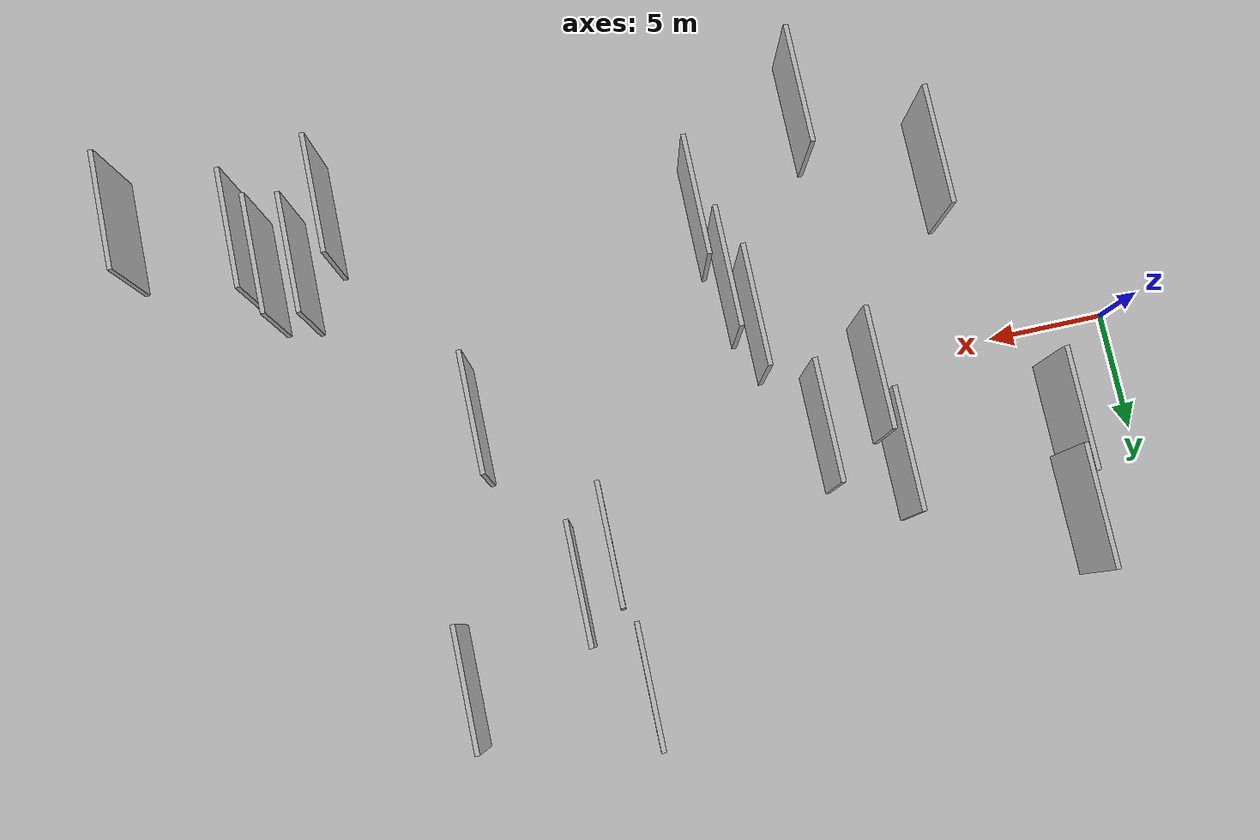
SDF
<?xml version="1.0" encoding="utf-8"?>

<sdf version="1.6">

   <world name="default">

      <gui fullscreen="0">

         <camera name="user_camera">

            <pose>-15 0 4.57585 0 0 0</pose>

            <view_controller>orbit</view_controller>

         </camera>

      </gui>

      <scene>

         <sky>

           <clouds>

             <speed>12</speed>

           </clouds>

         </sky>

         <ambient>0.4 0.4 0.4 1</ambient>

         <background>0.7 0.7 0.7 1</background>

         <shadows>1</shadows>

      </scene>

      <gravity>0 0 -9.8066</gravity>

      <magnetic_field>6e-06 2.3e-05 -4.2e-05</magnetic_field>

      <physics default="0" name="default_physics" type="ode">

         <ode>

            <solver>

               <type>quick</type>

               <iters>10</iters>

               <sor>1.0</sor>

               <use_dynamic_moi_rescaling>0</use_dynamic_moi_rescaling>

            </solver>

            <constraints>

               <cfm>0</cfm>

               <erp>0.2</erp>

               <contact_max_correcting_vel>100</contact_max_correcting_vel>

               <contact_surface_layer>0.001</contact_surface_layer>

            </constraints>

         </ode>

         <max_step_size>0.004</max_step_size>

         <real_time_factor>1</real_time_factor>

         <real_time_update_rate>250</real_time_update_rate>

      </physics>

      <light name="sun" type="directional">

         <cast_shadows>1</cast_shadows>

         <pose>0 0 10 0 0 0</pose>

         <diffuse>0.8 0.8 0.8 1</diffuse>

         <specular>0.2 0.2 0.2 1</specular>

         <attenuation>

            <range>1000</range>

            <constant>0.9</constant>

            <linear>0.01</linear>

            <quadratic>0.001</quadratic>

         </attenuation>

         <direction>-0.5 0.1 -0.9</direction>

      </light>

      <include>

         <name>ground_plane_1</name>

         <uri>model://HANNAS_ground_plane</uri>

         <pose>0 0 0  0 0 0</pose>

      </include>

      <include>

         <name>ground_plane_2</name>

         <uri>model://HANNAS_ground_plane</uri>

         <pose>100 0 0  0 0 0</pose>

      </include>

      <model name="HANNAS_wall_1">

         <static>1</static>

         <pose frame="">29.6323 9.9711 2.5 0.000000 0.000000 1.570796</pose>

         <link name="link">

            <pose frame="">0 0 2.50 0 0 0</pose>

            <collision name="collision">

               <geometry>

                  <box>

                     <size>5.00 0.2 5.00</size>

                  </box>

               </geometry>

               <max_contacts>10</max_contacts>

               <surface>

                  <contact>

                     <ode/>

                  </contact>

                  <bounce/>

                  <friction>

                     <torsional>

                        <ode/>

                     </torsional>

                     <ode/>

                  </friction>

               </surface>

            </collision>

            <visual name="visual">

               <cast_shadows>0</cast_shadows>

               <geometry>

                  <box>

                     <size>5.00 0.2 5.00</size>

                  </box>

               </geometry>

               <material>

                  <script>

                     <uri>model://HANNAS_wall/materials/scripts</uri>

                     <uri>model://HANNAS_wall/materials/textures</uri>

                     <name>vrc/HANNAS_wall</name>

                  </script>

               </material>

            </visual>

            <self_collide>0</self_collide>

            <enable_wind>0</enable_wind>

            <kinematic>0</kinematic>

         </link>

      </model>

      <model name="HANNAS_wall_2">

         <static>1</static>

         <pose frame="">11.9183 -10.7763 2.5 0.000000 0.000000 1.570796</pose>

         <link name="link">

            <pose frame="">0 0 2.50 0 0 0</pose>

            <collision name="collision">

               <geometry>

                  <box>

                     <size>5.00 0.2 5.00</size>

                  </box>

               </geometry>

               <max_contacts>10</max_contacts>

               <surface>

                  <contact>

                     <ode/>

                  </contact>

                  <bounce/>

                  <friction>

                     <torsional>

                        <ode/>

                     </torsional>

                     <ode/>

                  </friction>

               </surface>

            </collision>

            <visual name="visual">

               <cast_shadows>0</cast_shadows>

               <geometry>

                  <box>

                     <size>5.00 0.2 5.00</size>

                  </box>

               </geometry>

               <material>

                  <script>

                     <uri>model://HANNAS_wall/materials/scripts</uri>

                     <uri>model://HANNAS_wall/materials/textures</uri>

                     <name>vrc/HANNAS_wall</name>

                  </script>

               </material>

            </visual>

            <self_collide>0</self_collide>

            <enable_wind>0</enable_wind>

            <kinematic>0</kinematic>

         </link>

      </model>

      <model name="HANNAS_wall_3">

         <static>1</static>

         <pose frame="">33.2315 -8.1666 2.5 0.000000 0.000000 1.570796</pose>

         <link name="link">

            <pose frame="">0 0 2.50 0 0 0</pose>

            <collision name="collision">

               <geometry>

                  <box>

                     <size>5.00 0.2 5.00</size>

                  </box>

               </geometry>

               <max_contacts>10</max_contacts>

               <surface>

                  <contact>

                     <ode/>

                  </contact>

                  <bounce/>

                  <friction>

                     <torsional>

                        <ode/>

                     </torsional>

                     <ode/>

                  </friction>

               </surface>

            </collision>

            <visual name="visual">

               <cast_shadows>0</cast_shadows>

               <geometry>

                  <box>

                     <size>5.00 0.2 5.00</size>

                  </box>

               </geometry>

               <material>

                  <script>

                     <uri>model://HANNAS_wall/materials/scripts</uri>

                     <uri>model://HANNAS_wall/materials/textures</uri>

                     <name>vrc/HANNAS_wall</name>

                  </script>

               </material>

            </visual>

            <self_collide>0</self_collide>

            <enable_wind>0</enable_wind>

            <kinematic>0</kinematic>

         </link>

      </model>

      <model name="HANNAS_wall_4">

         <static>1</static>

         <pose frame="">31.8555 -10.3604 2.5 0.000000 0.000000 1.570796</pose>

         <link name="link">

            <pose frame="">0 0 2.50 0 0 0</pose>

            <collision name="collision">

               <geometry>

                  <box>

                     <size>5.00 0.2 5.00</size>

                  </box>

               </geometry>

               <max_contacts>10</max_contacts>

               <surface>

                  <contact>

                     <ode/>

                  </contact>

                  <bounce/>

                  <friction>

                     <torsional>

                        <ode/>

                     </torsional>

                     <ode/>

                  </friction>

               </surface>

            </collision>

            <visual name="visual">

               <cast_shadows>0</cast_shadows>

               <geometry>

                  <box>

                     <size>5.00 0.2 5.00</size>

                  </box>

               </geometry>

               <material>

                  <script>

                     <uri>model://HANNAS_wall/materials/scripts</uri>

                     <uri>model://HANNAS_wall/materials/textures</uri>

                     <name>vrc/HANNAS_wall</name>

                  </script>

               </material>

            </visual>

            <self_collide>0</self_collide>

            <enable_wind>0</enable_wind>

            <kinematic>0</kinematic>

         </link>

      </model>

      <model name="HANNAS_wall_5">

         <static>1</static>

         <pose frame="">4.2791 8.1988 2.5 0.000000 0.000000 1.570796</pose>

         <link name="link">

            <pose frame="">0 0 2.50 0 0 0</pose>

            <collision name="collision">

               <geometry>

                  <box>

                     <size>5.00 0.2 5.00</size>

                  </box>

               </geometry>

               <max_contacts>10</max_contacts>

               <surface>

                  <contact>

                     <ode/>

                  </contact>

                  <bounce/>

                  <friction>

                     <torsional>

                        <ode/>

                     </torsional>

                     <ode/>

                  </friction>

               </surface>

            </collision>

            <visual name="visual">

               <cast_shadows>0</cast_shadows>

               <geometry>

                  <box>

                     <size>5.00 0.2 5.00</size>

                  </box>

               </geometry>

               <material>

                  <script>

                     <uri>model://HANNAS_wall/materials/scripts</uri>

                     <uri>model://HANNAS_wall/materials/textures</uri>

                     <name>vrc/HANNAS_wall</name>

                  </script>

               </material>

            </visual>

            <self_collide>0</self_collide>

            <enable_wind>0</enable_wind>

            <kinematic>0</kinematic>

         </link>

      </model>

      <model name="HANNAS_wall_6">

         <static>1</static>

         <pose frame="">35.4188 -9.6532 2.5 0.000000 0.000000 1.570796</pose>

         <link name="link">

            <pose frame="">0 0 2.50 0 0 0</pose>

            <collision name="collision">

               <geometry>

                  <box>

                     <size>5.00 0.2 5.00</size>

                  </box>

               </geometry>

               <max_contacts>10</max_contacts>

               <surface>

                  <contact>

                     <ode/>

                  </contact>

                  <bounce/>

                  <friction>

                     <torsional>

                        <ode/>

                     </torsional>

                     <ode/>

                  </friction>

               </surface>

            </collision>

            <visual name="visual">

               <cast_shadows>0</cast_shadows>

               <geometry>

                  <box>

                     <size>5.00 0.2 5.00</size>

                  </box>

               </geometry>

               <material>

                  <script>

                     <uri>model://HANNAS_wall/materials/scripts</uri>

                     <uri>model://HANNAS_wall/materials/textures</uri>

                     <name>vrc/HANNAS_wall</name>

                  </script>

               </material>

            </visual>

            <self_collide>0</self_collide>

            <enable_wind>0</enable_wind>

            <kinematic>0</kinematic>

         </link>

      </model>

      <model name="HANNAS_wall_7">

         <static>1</static>

         <pose frame="">40.2267 -11.4099 2.5 0.000000 0.000000 1.570796</pose>

         <link name="link">

            <pose frame="">0 0 2.50 0 0 0</pose>

            <collision name="collision">

               <geometry>

                  <box>

                     <size>5.00 0.2 5.00</size>

                  </box>

               </geometry>

               <max_contacts>10</max_contacts>

               <surface>

                  <contact>

                     <ode/>

                  </contact>

                  <bounce/>

                  <friction>

                     <torsional>

                        <ode/>

                     </torsional>

                     <ode/>

                  </friction>

               </surface>

            </collision>

            <visual name="visual">

               <cast_shadows>0</cast_shadows>

               <geometry>

                  <box>

                     <size>5.00 0.2 5.00</size>

                  </box>

               </geometry>

               <material>

                  <script>

                     <uri>model://HANNAS_wall/materials/scripts</uri>

                     <uri>model://HANNAS_wall/materials/textures</uri>

                     <name>vrc/HANNAS_wall</name>

                  </script>

               </material>

            </visual>

            <self_collide>0</self_collide>

            <enable_wind>0</enable_wind>

            <kinematic>0</kinematic>

         </link>

      </model>

      <model name="HANNAS_wall_8">

         <static>1</static>

         <pose frame="">13.8173 2.7750 2.5 0.000000 0.000000 1.570796</pose>

         <link name="link">

            <pose frame="">0 0 2.50 0 0 0</pose>

            <collision name="collision">

               <geometry>

                  <box>

                     <size>5.00 0.2 5.00</size>

                  </box>

               </geometry>

               <max_contacts>10</max_contacts>

               <surface>

                  <contact>

                     <ode/>

                  </contact>

                  <bounce/>

                  <friction>

                     <torsional>

                        <ode/>

                     </torsional>

                     <ode/>

                  </friction>

               </surface>

            </collision>

            <visual name="visual">

               <cast_shadows>0</cast_shadows>

               <geometry>

                  <box>

                     <size>5.00 0.2 5.00</size>

                  </box>

               </geometry>

               <material>

                  <script>

                     <uri>model://HANNAS_wall/materials/scripts</uri>

                     <uri>model://HANNAS_wall/materials/textures</uri>

                     <name>vrc/HANNAS_wall</name>

                  </script>

               </material>

            </visual>

            <self_collide>0</self_collide>

            <enable_wind>0</enable_wind>

            <kinematic>0</kinematic>

         </link>

      </model>

      <model name="HANNAS_wall_9">

         <static>1</static>

         <pose frame="">23.1406 5.7206 2.5 0.000000 0.000000 1.570796</pose>

         <link name="link">

            <pose frame="">0 0 2.50 0 0 0</pose>

            <collision name="collision">

               <geometry>

                  <box>

                     <size>5.00 0.2 5.00</size>

                  </box>

               </geometry>

               <max_contacts>10</max_contacts>

               <surface>

                  <contact>

                     <ode/>

                  </contact>

                  <bounce/>

                  <friction>

                     <torsional>

                        <ode/>

                     </torsional>

                     <ode/>

                  </friction>

               </surface>

            </collision>

            <visual name="visual">

               <cast_shadows>0</cast_shadows>

               <geometry>

                  <box>

                     <size>5.00 0.2 5.00</size>

                  </box>

               </geometry>

               <material>

                  <script>

                     <uri>model://HANNAS_wall/materials/scripts</uri>

                     <uri>model://HANNAS_wall/materials/textures</uri>

                     <name>vrc/HANNAS_wall</name>

                  </script>

               </material>

            </visual>

            <self_collide>0</self_collide>

            <enable_wind>0</enable_wind>

            <kinematic>0</kinematic>

         </link>

      </model>

      <model name="HANNAS_wall_10">

         <static>1</static>

         <pose frame="">11.3944 1.1582 2.5 0.000000 0.000000 1.570796</pose>

         <link name="link">

            <pose frame="">0 0 2.50 0 0 0</pose>

            <collision name="collision">

               <geometry>

                  <box>

                     <size>5.00 0.2 5.00</size>

                  </box>

               </geometry>

               <max_contacts>10</max_contacts>

               <surface>

                  <contact>

                     <ode/>

                  </contact>

                  <bounce/>

                  <friction>

                     <torsional>

                        <ode/>

                     </torsional>

                     <ode/>

                  </friction>

               </surface>

            </collision>

            <visual name="visual">

               <cast_shadows>0</cast_shadows>

               <geometry>

                  <box>

                     <size>5.00 0.2 5.00</size>

                  </box>

               </geometry>

               <material>

                  <script>

                     <uri>model://HANNAS_wall/materials/scripts</uri>

                     <uri>model://HANNAS_wall/materials/textures</uri>

                     <name>vrc/HANNAS_wall</name>

                  </script>

               </material>

            </visual>

            <self_collide>0</self_collide>

            <enable_wind>0</enable_wind>

            <kinematic>0</kinematic>

         </link>

      </model>

      <model name="HANNAS_wall_11">

         <static>1</static>

         <pose frame="">22.7421 11.3130 2.5 0.000000 0.000000 1.570796</pose>

         <link name="link">

            <pose frame="">0 0 2.50 0 0 0</pose>

            <collision name="collision">

               <geometry>

                  <box>

                     <size>5.00 0.2 5.00</size>

                  </box>

               </geometry>

               <max_contacts>10</max_contacts>

               <surface>

                  <contact>

                     <ode/>

                  </contact>

                  <bounce/>

                  <friction>

                     <torsional>

                        <ode/>

                     </torsional>

                     <ode/>

                  </friction>

               </surface>

            </collision>

            <visual name="visual">

               <cast_shadows>0</cast_shadows>

               <geometry>

                  <box>

                     <size>5.00 0.2 5.00</size>

                  </box>

               </geometry>

               <material>

                  <script>

                     <uri>model://HANNAS_wall/materials/scripts</uri>

                     <uri>model://HANNAS_wall/materials/textures</uri>

                     <name>vrc/HANNAS_wall</name>

                  </script>

               </material>

            </visual>

            <self_collide>0</self_collide>

            <enable_wind>0</enable_wind>

            <kinematic>0</kinematic>

         </link>

      </model>

      <model name="HANNAS_wall_12">

         <static>1</static>

         <pose frame="">16.9407 -7.1374 2.5 0.000000 0.000000 1.570796</pose>

         <link name="link">

            <pose frame="">0 0 2.50 0 0 0</pose>

            <collision name="collision">

               <geometry>

                  <box>

                     <size>5.00 0.2 5.00</size>

                  </box>

               </geometry>

               <max_contacts>10</max_contacts>

               <surface>

                  <contact>

                     <ode/>

                  </contact>

                  <bounce/>

                  <friction>

                     <torsional>

                        <ode/>

                     </torsional>

                     <ode/>

                  </friction>

               </surface>

            </collision>

            <visual name="visual">

               <cast_shadows>0</cast_shadows>

               <geometry>

                  <box>

                     <size>5.00 0.2 5.00</size>

                  </box>

               </geometry>

               <material>

                  <script>

                     <uri>model://HANNAS_wall/materials/scripts</uri>

                     <uri>model://HANNAS_wall/materials/textures</uri>

                     <name>vrc/HANNAS_wall</name>

                  </script>

               </material>

            </visual>

            <self_collide>0</self_collide>

            <enable_wind>0</enable_wind>

            <kinematic>0</kinematic>

         </link>

      </model>

      <model name="HANNAS_wall_13">

         <static>1</static>

         <pose frame="">27.3928 -0.4049 2.5 0.000000 0.000000 1.570796</pose>

         <link name="link">

            <pose frame="">0 0 2.50 0 0 0</pose>

            <collision name="collision">

               <geometry>

                  <box>

                     <size>5.00 0.2 5.00</size>

                  </box>

               </geometry>

               <max_contacts>10</max_contacts>

               <surface>

                  <contact>

                     <ode/>

                  </contact>

                  <bounce/>

                  <friction>

                     <torsional>

                        <ode/>

                     </torsional>

                     <ode/>

                  </friction>

               </surface>

            </collision>

            <visual name="visual">

               <cast_shadows>0</cast_shadows>

               <geometry>

                  <box>

                     <size>5.00 0.2 5.00</size>

                  </box>

               </geometry>

               <material>

                  <script>

                     <uri>model://HANNAS_wall/materials/scripts</uri>

                     <uri>model://HANNAS_wall/materials/textures</uri>

                     <name>vrc/HANNAS_wall</name>

                  </script>

               </material>

            </visual>

            <self_collide>0</self_collide>

            <enable_wind>0</enable_wind>

            <kinematic>0</kinematic>

         </link>

      </model>

      <model name="HANNAS_wall_14">

         <static>1</static>

         <pose frame="">15.5740 -2.2764 2.5 0.000000 0.000000 1.570796</pose>

         <link name="link">

            <pose frame="">0 0 2.50 0 0 0</pose>

            <collision name="collision">

               <geometry>

                  <box>

                     <size>5.00 0.2 5.00</size>

                  </box>

               </geometry>

               <max_contacts>10</max_contacts>

               <surface>

                  <contact>

                     <ode/>

                  </contact>

                  <bounce/>

                  <friction>

                     <torsional>

                        <ode/>

                     </torsional>

                     <ode/>

                  </friction>

               </surface>

            </collision>

            <visual name="visual">

               <cast_shadows>0</cast_shadows>

               <geometry>

                  <box>

                     <size>5.00 0.2 5.00</size>

                  </box>

               </geometry>

               <material>

                  <script>

                     <uri>model://HANNAS_wall/materials/scripts</uri>

                     <uri>model://HANNAS_wall/materials/textures</uri>

                     <name>vrc/HANNAS_wall</name>

                  </script>

               </material>

            </visual>

            <self_collide>0</self_collide>

            <enable_wind>0</enable_wind>

            <kinematic>0</kinematic>

         </link>

      </model>

      <model name="HANNAS_wall_15">

         <static>1</static>

         <pose frame="">24.6186 6.9523 2.5 0.000000 0.000000 1.570796</pose>

         <link name="link">

            <pose frame="">0 0 2.50 0 0 0</pose>

            <collision name="collision">

               <geometry>

                  <box>

                     <size>5.00 0.2 5.00</size>

                  </box>

               </geometry>

               <max_contacts>10</max_contacts>

               <surface>

                  <contact>

                     <ode/>

                  </contact>

                  <bounce/>

                  <friction>

                     <torsional>

                        <ode/>

                     </torsional>

                     <ode/>

                  </friction>

               </surface>

            </collision>

            <visual name="visual">

               <cast_shadows>0</cast_shadows>

               <geometry>

                  <box>

                     <size>5.00 0.2 5.00</size>

                  </box>

               </geometry>

               <material>

                  <script>

                     <uri>model://HANNAS_wall/materials/scripts</uri>

                     <uri>model://HANNAS_wall/materials/textures</uri>

                     <name>vrc/HANNAS_wall</name>

                  </script>

               </material>

            </visual>

            <self_collide>0</self_collide>

            <enable_wind>0</enable_wind>

            <kinematic>0</kinematic>

         </link>

      </model>

      <model name="HANNAS_wall_16">

         <static>1</static>

         <pose frame="">7.0105 -7.1644 2.5 0.000000 0.000000 1.570796</pose>

         <link name="link">

            <pose frame="">0 0 2.50 0 0 0</pose>

            <collision name="collision">

               <geometry>

                  <box>

                     <size>5.00 0.2 5.00</size>

                  </box>

               </geometry>

               <max_contacts>10</max_contacts>

               <surface>

                  <contact>

                     <ode/>

                  </contact>

                  <bounce/>

                  <friction>

                     <torsional>

                        <ode/>

                     </torsional>

                     <ode/>

                  </friction>

               </surface>

            </collision>

            <visual name="visual">

               <cast_shadows>0</cast_shadows>

               <geometry>

                  <box>

                     <size>5.00 0.2 5.00</size>

                  </box>

               </geometry>

               <material>

                  <script>

                     <uri>model://HANNAS_wall/materials/scripts</uri>

                     <uri>model://HANNAS_wall/materials/textures</uri>

                     <name>vrc/HANNAS_wall</name>

                  </script>

               </material>

            </visual>

            <self_collide>0</self_collide>

            <enable_wind>0</enable_wind>

            <kinematic>0</kinematic>

         </link>

      </model>

      <model name="HANNAS_wall_17">

         <static>1</static>

         <pose frame="">4.0653 4.3527 2.5 0.000000 0.000000 1.570796</pose>

         <link name="link">

            <pose frame="">0 0 2.50 0 0 0</pose>

            <collision name="collision">

               <geometry>

                  <box>

                     <size>5.00 0.2 5.00</size>

                  </box>

               </geometry>

               <max_contacts>10</max_contacts>

               <surface>

                  <contact>

                     <ode/>

                  </contact>

                  <bounce/>

                  <friction>

                     <torsional>

                        <ode/>

                     </torsional>

                     <ode/>

                  </friction>

               </surface>

            </collision>

            <visual name="visual">

               <cast_shadows>0</cast_shadows>

               <geometry>

                  <box>

                     <size>5.00 0.2 5.00</size>

                  </box>

               </geometry>

               <material>

                  <script>

                     <uri>model://HANNAS_wall/materials/scripts</uri>

                     <uri>model://HANNAS_wall/materials/textures</uri>

                     <name>vrc/HANNAS_wall</name>

                  </script>

               </material>

            </visual>

            <self_collide>0</self_collide>

            <enable_wind>0</enable_wind>

            <kinematic>0</kinematic>

         </link>

      </model>

      <model name="HANNAS_wall_18">

         <static>1</static>

         <pose frame="">34.6201 -8.4127 2.5 0.000000 0.000000 1.570796</pose>

         <link name="link">

            <pose frame="">0 0 2.50 0 0 0</pose>

            <collision name="collision">

               <geometry>

                  <box>

                     <size>5.00 0.2 5.00</size>

                  </box>

               </geometry>

               <max_contacts>10</max_contacts>

               <surface>

                  <contact>

                     <ode/>

                  </contact>

                  <bounce/>

                  <friction>

                     <torsional>

                        <ode/>

                     </torsional>

                     <ode/>

                  </friction>

               </surface>

            </collision>

            <visual name="visual">

               <cast_shadows>0</cast_shadows>

               <geometry>

                  <box>

                     <size>5.00 0.2 5.00</size>

                  </box>

               </geometry>

               <material>

                  <script>

                     <uri>model://HANNAS_wall/materials/scripts</uri>

                     <uri>model://HANNAS_wall/materials/textures</uri>

                     <name>vrc/HANNAS_wall</name>

                  </script>

               </material>

            </visual>

            <self_collide>0</self_collide>

            <enable_wind>0</enable_wind>

            <kinematic>0</kinematic>

         </link>

      </model>

      <model name="HANNAS_wall_19">

         <static>1</static>

         <pose frame="">16.3258 -4.0363 2.5 0.000000 0.000000 1.570796</pose>

         <link name="link">

            <pose frame="">0 0 2.50 0 0 0</pose>

            <collision name="collision">

               <geometry>

                  <box>

                     <size>5.00 0.2 5.00</size>

                  </box>

               </geometry>

               <max_contacts>10</max_contacts>

               <surface>

                  <contact>

                     <ode/>

                  </contact>

                  <bounce/>

                  <friction>

                     <torsional>

                        <ode/>

                     </torsional>

                     <ode/>

                  </friction>

               </surface>

            </collision>

            <visual name="visual">

               <cast_shadows>0</cast_shadows>

               <geometry>

                  <box>

                     <size>5.00 0.2 5.00</size>

                  </box>

               </geometry>

               <material>

                  <script>

                     <uri>model://HANNAS_wall/materials/scripts</uri>

                     <uri>model://HANNAS_wall/materials/textures</uri>

                     <name>vrc/HANNAS_wall</name>

                  </script>

               </material>

            </visual>

            <self_collide>0</self_collide>

            <enable_wind>0</enable_wind>

            <kinematic>0</kinematic>

         </link>

      </model>

      <model name="HANNAS_wall_20">

         <static>1</static>

         <pose frame="">11.0237 4.5029 2.5 0.000000 0.000000 1.570796</pose>

         <link name="link">

            <pose frame="">0 0 2.50 0 0 0</pose>

            <collision name="collision">

               <geometry>

                  <box>

                     <size>5.00 0.2 5.00</size>

                  </box>

               </geometry>

               <max_contacts>10</max_contacts>

               <surface>

                  <contact>

                     <ode/>

                  </contact>

                  <bounce/>

                  <friction>

                     <torsional>

                        <ode/>

                     </torsional>

                     <ode/>

                  </friction>

               </surface>

            </collision>

            <visual name="visual">

               <cast_shadows>0</cast_shadows>

               <geometry>

                  <box>

                     <size>5.00 0.2 5.00</size>

                  </box>

               </geometry>

               <material>

                  <script>

                     <uri>model://HANNAS_wall/materials/scripts</uri>

                     <uri>model://HANNAS_wall/materials/textures</uri>

                     <name>vrc/HANNAS_wall</name>

                  </script>

               </material>

            </visual>

            <self_collide>0</self_collide>

            <enable_wind>0</enable_wind>

            <kinematic>0</kinematic>

         </link>

      </model>

   </world>

</sdf>

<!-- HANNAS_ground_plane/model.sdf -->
<sdf version="1.4">
<model name="HANNAS_ground_plane">
  <static>true</static>
    <link name="link">
      <collision name="collision">
        <geometry>
          <plane>
            <normal>0 0 1</normal>
            <size>1000 1000</size>
          </plane>
        </geometry>
        <surface>
          <friction>
            <ode>
              <mu>100</mu>
              <mu2>50</mu2>
            </ode>
          </friction>
        </surface>
      </collision>
      <visual name="visual">
        <cast_shadows>false</cast_shadows>
        <geometry>
          <plane>
            <normal>0 0 1</normal>
            <size>1000 1000</size>
          </plane>
        </geometry>
        <material>
          <script>
            <uri>model://HANNAS_ground_plane/materials/scripts/HANNAS_ground_plane.material</uri>
	    <uri>model://HANNAS_ground_plane/materials/textures</uri>
            <name>HANNASGroundPlane/Image</name>
          </script>
        </material>
      </visual>
    </link>
  </model>
</sdf>
